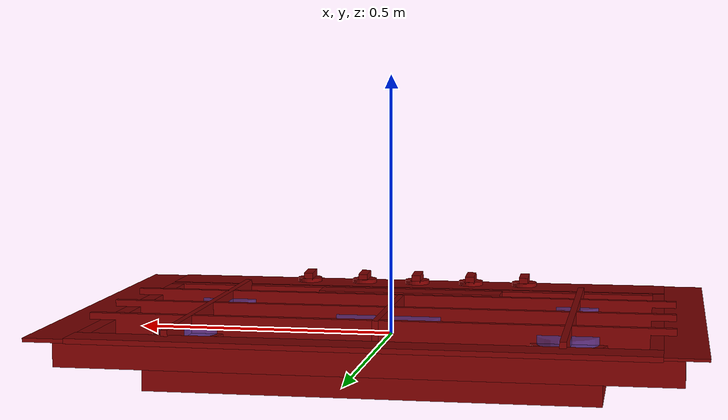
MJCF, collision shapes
<?xml version='1.0' encoding='UTF-8'?>
<mujoco model="model">
  <compiler angle="radian"/>
  <asset>
    <mesh file="visuals/knob_center.obj" name="knob_center_vis"/>
    <mesh file="visuals/knob_front_left.obj" name="knob_front_left_vis"/>
    <mesh file="visuals/knob_front_right.obj" name="knob_front_right_vis"/>
    <mesh file="visuals/knob_rear_left.obj" name="knob_rear_left_vis"/>
    <mesh file="visuals/knob_rear_right.obj" name="knob_rear_right_vis"/>
    <mesh file="visuals/Body001.obj" name="Body001_vis"/>
    <texture file="visuals/T_BC001.png" name="Body001_material" type="2d"/>
    <material name="Body001_material" rgba="1 1 1 1.0" texture="Body001_material" shininess="0.2512328028678894" specular="1.5"/>
    <texture file="visuals/T_BC001.png" name="knob_center_material" type="2d"/>
    <material name="knob_center_material" rgba="1 1 1 1.0" texture="knob_center_material" shininess="0.2512328028678894" specular="0.8"/>
    <texture file="visuals/T_BC001.png" name="knob_front_left_material" type="2d"/>
    <material name="knob_front_left_material" rgba="1 1 1 1.0" texture="knob_front_left_material" shininess="0.2512328028678894" specular="0.8"/>
    <texture file="visuals/T_BC001.png" name="knob_front_right_material" type="2d"/>
    <material name="knob_front_right_material" rgba="1 1 1 1.0" texture="knob_front_right_material" shininess="0.2512328028678894" specular="0.8"/>
    <texture file="visuals/T_BC001.png" name="knob_rear_left_material" type="2d"/>
    <material name="knob_rear_left_material" rgba="1 1 1 1.0" texture="knob_rear_left_material" shininess="0.2512328028678894" specular="0.8"/>
    <texture file="visuals/T_BC001.png" name="knob_rear_right_material" type="2d"/>
    <material name="knob_rear_right_material" rgba="1 1 1 1.0" texture="knob_rear_right_material" shininess="0.2512328028678894" specular="0.8"/>
  </asset>
  <default>
    <default class="visual">
      <geom conaffinity="0" contype="0" group="1" type="mesh"/>
    </default>
    <default class="collision">
      <geom group="0" rgba="0.5 0 0 0.5"/>
    </default>
    <default class="spawn">
      <geom group="0" rgba="1 1 1 0.5" contype="0" conaffinity="0"/>
      <site group="0" rgba="1 1 1 0.5"/>
    </default>
    <default class="region">
      <geom group="1" conaffinity="0" contype="0" rgba="0 1 0 0"/>
    </default>
  </default>
  <worldbody>
    <body>
      <body name="object">
        <site type="cylinder" rgba="0.3 0.4 1 0.5" size="0.10174809396266937 0.015186580829322338" pos="0.000041 0.030525 0.025580" name="burner_center"/>
        <site type="cylinder" rgba="0.3 0.4 1 0.5" size="0.042219217866659164 0.01313983928412199" pos="-0.352211 -0.119057 0.028270" name="burner_on_front_left"/>
        <site type="cylinder" rgba="0.3 0.4 1 0.5" size="0.055049147456884384 0.015225909650325775" pos="0.352525 -0.118754 0.026042" name="burner_on_front_right"/>
        <site type="cylinder" rgba="0.3 0.4 1 0.5" size="0.05681011453270912 0.01405488234013319" pos="-0.351370 0.181572 0.025012" name="burner_on_rear_left"/>
        <site type="cylinder" rgba="0.3 0.4 1 0.5" size="0.056028492748737335 0.014996767044067383" pos="0.352646 0.181532 0.025413" name="burner_on_rear_right"/>
        <geom mesh="Body001_vis" type="mesh" solimp="0.998 0.998 0.001" solref="0.001 1" density="100" friction="0.95 0.3 0.1" class="visual" material="Body001_material"/>
        <geom class="collision" type="cylinder" pos="0.000041 0.030827 0.008658" size="0.11562323570251465 0.015599443577229977" quat="1.0 0.0 0.0 0.0"/>
        <geom class="collision" type="cylinder" pos="-0.352715 0.180564 0.008658" size="0.07014685124158859 0.015599443577229977" quat="1.0 0.0 0.0 0.0"/>
        <geom class="collision" type="cylinder" pos="-0.351553 -0.120328 0.008658" size="0.05408955737948418 0.015599443577229977" quat="1.0 0.0 0.0 0.0"/>
        <geom class="collision" type="cylinder" pos="0.352888 0.181290 0.008658" size="0.06738413125276566 0.015599443577229977" quat="1.0 0.0 0.0 0.0"/>
        <geom class="collision" type="cylinder" pos="0.353130 -0.114519 0.008658" size="0.04618503898382187 0.015599443577229977" quat="1.0 0.0 0.0 0.0"/>
        <geom class="collision" type="box" pos="0.000042 0.000645 -0.038315" size="0.41752898693084717 0.27018192410469055 0.03174198418855667" quat="1.0 0.0 0.0 0.0"/>
        <geom class="collision" type="box" pos="0.000034 0.030160 0.025386" size="0.5441495776176453 0.00605808524414897 0.03195852041244507" quat="1.0 0.0 0.0 0.0"/>
        <geom class="collision" type="box" pos="0.000034 -0.120110 0.025386" size="0.5441497564315796 0.006058080121874809 0.031958527863025665" quat="1.0 0.0 0.0 0.0"/>
        <geom class="collision" type="box" pos="0.000034 0.180884 0.025386" size="0.5441498756408691 0.006058074533939362 0.03195853903889656" quat="1.0 0.0 0.0 0.0"/>
        <geom class="collision" type="box" pos="0.352343 0.036187 0.025386" size="0.006058061961084604 0.30706000328063965 0.03195854648947716" quat="1.0 0.0 0.0 0.0"/>
        <geom class="collision" type="box" pos="-0.351700 0.036187 0.025386" size="0.006058064755052328 0.3070598244667053 0.03195855766534805" quat="1.0 0.0 0.0 0.0"/>
        <geom class="collision" type="box" pos="-0.000159 0.036871 0.025386" size="0.006058067549020052 0.15302830934524536 0.03195856884121895" quat="1.0 0.0 0.0 0.0"/>
        <geom class="collision" type="box" pos="-0.559923 -0.000824 0.042350" size="0.038675907999277115 0.3925122320652008 0.002534598810598254" quat="1.0 0.0 0.0 0.0"/>
        <geom class="collision" type="box" pos="0.559099 -0.000215 0.041238" size="0.03762434795498848 0.3919035792350769 0.0036463614087551832" quat="1.0 0.0 0.0 0.0"/>
        <geom class="collision" type="box" pos="0.000114 -0.340476 0.042951" size="0.5213603973388672 0.05168314278125763 0.00316225690767169" quat="1.0 0.0 0.0 0.0"/>
        <geom class="collision" type="box" pos="0.000114 0.360287 0.041392" size="0.5213605761528015 0.031484026461839676 0.004720830358564854" quat="1.0 0.0 0.0 0.0"/>
        <geom class="collision" type="box" pos="-0.000645 -0.000767 -0.010144" size="0.4945574998855591 0.32405662536621094 0.009110087528824806" quat="1.0 0.0 0.0 0.0"/>
        <geom class="collision" type="box" pos="-0.528149 -0.001362 0.015686" size="0.030502265319228172 0.34187963604927063 0.02919819951057434" quat="1.0 0.0 0.0 0.0"/>
        <geom class="collision" type="box" pos="0.524622 -0.001362 0.015686" size="0.030502265319228172 0.34187963604927063 0.02919819951057434" quat="1.0 0.0 0.0 0.0"/>
        <geom class="collision" type="box" pos="-0.001283 0.339912 0.015686" size="0.556597113609314 0.014780125580728054 0.02919819951057434" quat="1.0 0.0 0.0 0.0"/>
        <geom class="collision" type="box" pos="-0.001283 -0.310847 0.015686" size="0.556597113609314 0.04429442435503006 0.02919819951057434" quat="1.0 0.0 0.0 0.0"/>
        <geom class="collision" type="box" pos="-0.000248 -0.239166 0.015240" size="0.18853846192359924 0.026875697076320648 0.030872490257024765" quat="1.0 0.0 0.0 0.0"/>
        <body name="knob_center">
          <joint axis="0.0 0.0 1.0" pos="0.001573 -0.344182 0.055213" limited="true" name="knob_center_joint" range="0.0 3.141592653589793" type="hinge" damping="0.05" armature="0.001"/>
          <geom mesh="knob_center_vis" type="mesh" solimp="0.998 0.998 0.001" solref="0.001 1" density="100" friction="0.95 0.3 0.1" class="visual" material="knob_center_material"/>
          <geom class="collision" type="cylinder" pos="0.000722 -0.344458 0.050633" size="0.025363123044371605 0.0042502121068537235" quat="1.0 0.0 0.0 0.0"/>
          <geom class="collision" type="box" pos="0.000248 -0.343426 0.060425" size="0.009305347688496113 0.023183302953839302 0.007698982488363981" quat="0.9993232488632202 -0.036783188581466675 -0.0 0.0"/>
        </body>
        <body name="knob_front_left">
          <joint axis="0.0 0.0 1.0" pos="-0.228125 -0.344182 0.055213" limited="true" name="knob_front_left_joint" range="0.0 3.141592653589793" type="hinge" damping="0.05" armature="0.001"/>
          <geom mesh="knob_front_left_vis" type="mesh" solimp="0.998 0.998 0.001" solref="0.001 1" density="100" friction="0.95 0.3 0.1" class="visual" material="knob_front_left_material"/>
          <geom class="collision" type="cylinder" pos="-0.228273 -0.344194 0.050667" size="0.02581617794930935 0.004138886462897062" quat="1.0 0.0 0.0 0.0"/>
          <geom class="collision" type="box" pos="-0.228479 -0.343426 0.060425" size="0.009305347688496113 0.023183302953839302 0.007698982488363981" quat="0.9993232488632202 -0.036783188581466675 -0.0 0.0"/>
        </body>
        <body name="knob_front_right">
          <joint axis="0.0 0.0 1.0" pos="0.234081 -0.344182 0.055213" limited="true" name="knob_front_right_joint" range="0.0 3.141592653589793" type="hinge" damping="0.05" armature="0.001"/>
          <geom mesh="knob_front_right_vis" type="mesh" solimp="0.998 0.998 0.001" solref="0.001 1" density="100" friction="0.95 0.3 0.1" class="visual" material="knob_front_right_material"/>
          <geom class="collision" type="cylinder" pos="0.234795 -0.344291 0.050633" size="0.025363123044371605 0.0042502121068537235" quat="1.0 0.0 0.0 0.0"/>
          <geom class="collision" type="box" pos="0.233881 -0.343426 0.060425" size="0.009305347688496113 0.023183302953839302 0.007698982488363981" quat="0.9993232488632202 -0.036783188581466675 -0.0 0.0"/>
        </body>
        <body name="knob_rear_left">
          <joint axis="0.0 0.0 1.0" pos="-0.114171 -0.344182 0.055213" limited="true" name="knob_rear_left_joint" range="0.0 3.141592653589793" type="hinge" damping="0.05" armature="0.001"/>
          <geom mesh="knob_rear_left_vis" type="mesh" solimp="0.998 0.998 0.001" solref="0.001 1" density="100" friction="0.95 0.3 0.1" class="visual" material="knob_rear_left_material"/>
          <geom class="collision" type="cylinder" pos="-0.114594 -0.344623 0.050633" size="0.025363123044371605 0.0042502121068537235" quat="1.0 0.0 0.0 0.0"/>
          <geom class="collision" type="box" pos="-0.114422 -0.343426 0.060425" size="0.009305347688496113 0.023183302953839302 0.007698982488363981" quat="0.9993232488632202 -0.036783188581466675 -0.0 0.0"/>
        </body>
        <body name="knob_rear_right">
          <joint axis="0.0 0.0 1.0" pos="0.114506 -0.344182 0.055213" limited="true" name="knob_rear_right_joint" range="0.0 3.141592653589793" type="hinge" damping="0.05" armature="0.001"/>
          <geom mesh="knob_rear_right_vis" type="mesh" solimp="0.998 0.998 0.001" solref="0.001 1" density="100" friction="0.95 0.3 0.1" class="visual" material="knob_rear_right_material"/>
          <geom class="collision" type="cylinder" pos="0.114595 -0.343959 0.050633" size="0.025363123044371605 0.0042502121068537235" quat="1.0 0.0 0.0 0.0"/>
          <geom class="collision" type="box" pos="0.114918 -0.343426 0.060425" size="0.009305347688496113 0.023183302953839302 0.007698982488363981" quat="0.9993232488632202 -0.036783188581466675 -0.0 0.0"/>
        </body>
        <geom class="region" name="reg_main" type="box" pos="0.0 0.0 -0.0132695" size="0.59864 0.393341 0.0555865"/>
      </body>
    </body>
  </worldbody>
  <actuator>
    <motor name="knob_center_joint_actuator" joint="knob_center_joint" gear="10"/>
    <motor name="knob_front_left_joint_actuator" joint="knob_front_left_joint" gear="10"/>
    <motor name="knob_front_right_joint_actuator" joint="knob_front_right_joint" gear="10"/>
    <motor name="knob_rear_left_joint_actuator" joint="knob_rear_left_joint" gear="10"/>
    <motor name="knob_rear_right_joint_actuator" joint="knob_rear_right_joint" gear="10"/>
  </actuator>
</mujoco>
